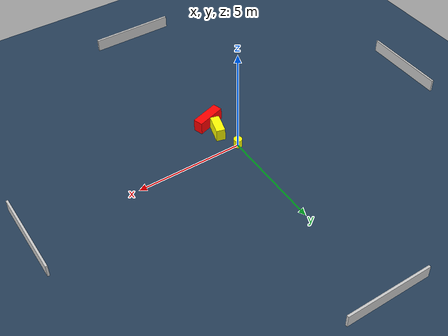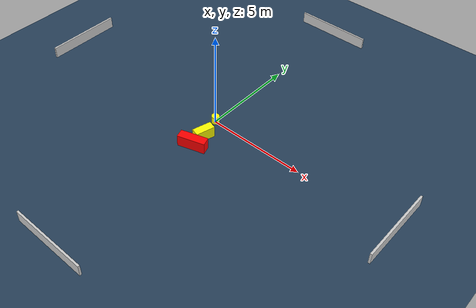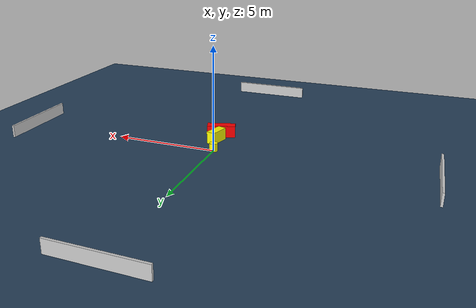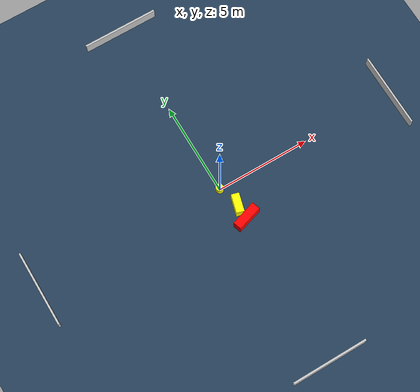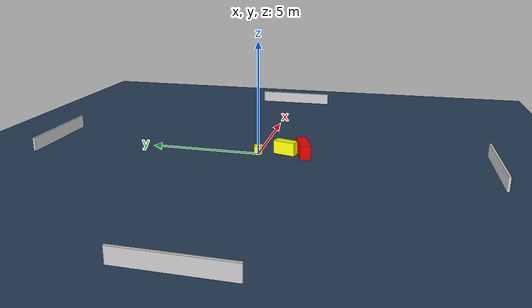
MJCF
<?xml version="1.0" ?>
<mujoco model="generated_environment">
  <option timestep="0.01" integrator="RK4" cone="elliptic"/>
  <default>
    <geom density="1"/>
  </default>
  <asset>
    <texture builtin="gradient" height="3072" name="skybox" rgb1="0.3 0.5 0.7" rgb2="0 0 0" type="skybox" width="512"/>
    <texture builtin="checker" height="300" name="groundplane" rgb1="0.2 0.3 0.4" rgb2="0.1 0.2 0.3" type="2d" width="300"/>
    <material name="groundplane" reflectance="0.2" texrepeat="5 5" texture="groundplane"/>
  </asset>
  <worldbody>
    <light dir="0 0 -1" directional="true" pos="0 0 1.5"/>
    <geom condim="3" friction="0.5 0.005 0.001" material="groundplane" name="floor" pos="0 0 0" size="0 0 0.05" type="plane"/>
    <body name="walls">
      <geom name="wall_1" condim="4" pos="-10.0 0.0 0.3" rgba="0.800000011920929 0.800000011920929 0.800000011920929 1.0" size="0.05 2.0 0.3" type="box"/>
      <geom name="wall_2" condim="4" pos="10.0 0.0 0.3" rgba="0.800000011920929 0.800000011920929 0.800000011920929 1.0" size="0.05 2.0 0.3" type="box"/>
      <geom name="wall_3" condim="4" pos="0.0 -10.0 0.3" rgba="0.800000011920929 0.800000011920929 0.800000011920929 1.0" size="2.0 0.05 0.3" type="box"/>
      <geom name="wall_4" condim="4" pos="0.0 10.0 0.3" rgba="0.800000011920929 0.800000011920929 0.800000011920929 1.0" size="2.0 0.05 0.3" type="box"/>
    </body>
    <body name="robot">
      <joint name="joint_x" type="slide" pos="0 0 0" axis="1 0 0"/>
      <joint name="joint_y" type="slide" pos="0 0 0" axis="0 1 0"/>
      <geom name="robot" type="cylinder" pos="0.0 0.0 0.2" size="0.2 0.2 0.0" mass="5.0" friction="1.0 0.005 0.0001" condim="4" rgba="1.0 1.0 0.0 1.0"/>
    </body>
    <body name="obstacle_1_movable">
      <geom name="obstacle_1_movable" condim="4" pos="0.3144158671313442 -1.1839055035236883 0.3" euler="0 0 254.78292760213648" friction="0.0 0.005 0.001" rgba="1.0 1.0 0.0 1.0" size="0.49288366731623634 0.21047968506263848 0.3" type="box" mass="0.1"/>
      <joint type="free"/>
    </body>
    <body name="obstacle_2_static">
      <geom name="obstacle_2_static" condim="4" pos="0.34649112417429273 -1.9684167234808727 0.3" euler="0 0 107.24747747876633" friction="0.0 0.005 0.001" rgba="1.0 0.0 0.0 1.0" size="0.22803812802326937 0.697335473126989 0.3" type="box"/>
    </body>
  </worldbody>
  <actuator>
    <motor name="actuator_x" joint="joint_x" gear="1" ctrlrange="-1 1"/>
    <motor name="actuator_y" joint="joint_y" gear="1" ctrlrange="-1 1"/>
  </actuator>
</mujoco>
